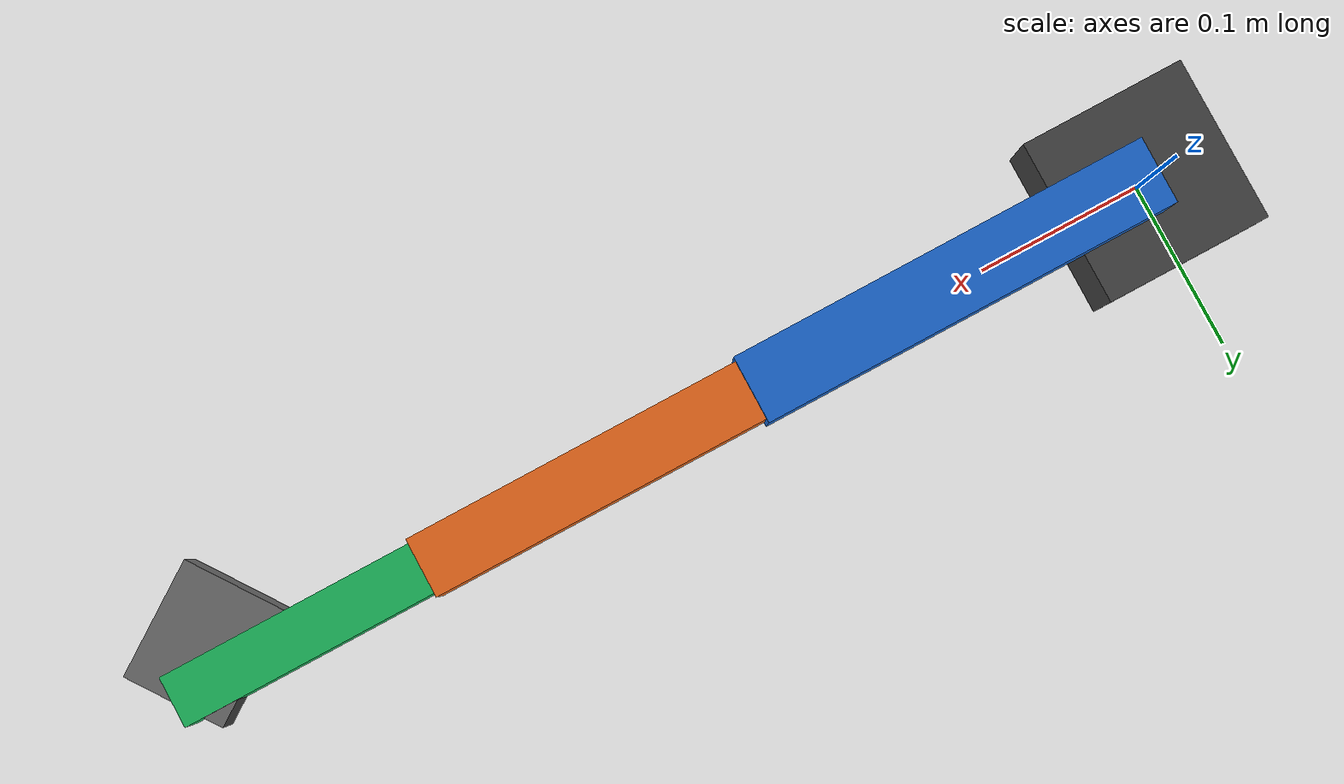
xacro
<?xml version="1.0"?>
<robot xmlns:xacro="http://www.ros.org/wiki/xacro" name="dynamixel_robot_arm">
  <xacro:arg name="device_name" default="/dev/ttyUSB0"/>
  <xacro:arg name="link1_length" default="0.25"/>
  <xacro:arg name="link2_length" default="0.20"/>
  <xacro:arg name="link3_length" default="0.15"/>
  <xacro:arg name="use_gripper" default="true"/>
  <xacro:arg name="degrees_per_tick" default="0.087890625"/>
  <xacro:arg name="joint1_motor_id" default="1"/>
  <xacro:arg name="joint1_expected_model" default="1001"/>
  <xacro:arg name="joint1_expected_operating_mode" default="3"/>
  <xacro:arg name="joint1_expected_drive_mode" default="0"/>
  <xacro:arg name="joint1_zero_ticks" default="2040"/>
  <xacro:arg name="joint1_direction" default="1.0"/>
  <xacro:arg name="joint1_min_absolute_deg" default="80.84"/>
  <xacro:arg name="joint1_max_absolute_deg" default="277.84"/>
  <xacro:arg name="joint2_motor_id" default="2"/>
  <xacro:arg name="joint2_expected_model" default="1001"/>
  <xacro:arg name="joint2_expected_operating_mode" default="3"/>
  <xacro:arg name="joint2_expected_drive_mode" default="0"/>
  <xacro:arg name="joint2_zero_ticks" default="2553"/>
  <xacro:arg name="joint2_direction" default="1.0"/>
  <xacro:arg name="joint2_min_absolute_deg" default="111.25"/>
  <xacro:arg name="joint2_max_absolute_deg" default="337.52"/>
  <xacro:arg name="joint3_motor_id" default="3"/>
  <xacro:arg name="joint3_expected_model" default="1020"/>
  <xacro:arg name="joint3_expected_operating_mode" default="3"/>
  <xacro:arg name="joint3_expected_drive_mode" default="0"/>
  <xacro:arg name="joint3_zero_ticks" default="2375"/>
  <xacro:arg name="joint3_direction" default="1.0"/>
  <xacro:arg name="joint3_min_absolute_deg" default="105.45"/>
  <xacro:arg name="joint3_max_absolute_deg" default="311.95"/>
  <xacro:arg name="gripper_joint_motor_id" default="4"/>
  <xacro:arg name="gripper_joint_expected_model" default="1020"/>
  <xacro:arg name="gripper_joint_expected_operating_mode" default="4"/>
  <xacro:arg name="gripper_joint_expected_drive_mode" default="0"/>
  <xacro:arg name="gripper_joint_zero_ticks" default="2305"/>
  <xacro:arg name="gripper_joint_direction" default="1.0"/>
  <xacro:arg name="gripper_joint_min_absolute_deg" default="320.80078125"/>
  <xacro:arg name="gripper_joint_max_absolute_deg" default="514.072265625"/>
  <xacro:property name="link1_length" value="$(arg link1_length)"/>
  <xacro:property name="link2_length" value="$(arg link2_length)"/>
  <xacro:property name="link3_length" value="$(arg link3_length)"/>
  <!-- Launch supplies these values from config/robot_arm_calibration.yaml. -->
  <xacro:property name="degrees_per_tick" value="$(arg degrees_per_tick)"/>
  <xacro:property name="radians_per_tick" value="${radians(float(degrees_per_tick))}"/>
  <xacro:property name="joint1_zero_deg"
    value="${int('$(arg joint1_zero_ticks)') * float(degrees_per_tick)}"/>
  <xacro:property name="joint2_zero_deg"
    value="${int('$(arg joint2_zero_ticks)') * float(degrees_per_tick)}"/>
  <xacro:property name="joint3_zero_deg"
    value="${int('$(arg joint3_zero_ticks)') * float(degrees_per_tick)}"/>
  <xacro:property name="gripper_zero_deg"
    value="${int('$(arg gripper_joint_zero_ticks)') * float(degrees_per_tick)}"/>
  <xacro:property name="joint1_a"
    value="${float('$(arg joint1_direction)') * (float('$(arg joint1_min_absolute_deg)') - joint1_zero_deg)}"/>
  <xacro:property name="joint1_b"
    value="${float('$(arg joint1_direction)') * (float('$(arg joint1_max_absolute_deg)') - joint1_zero_deg)}"/>
  <xacro:property name="joint2_a"
    value="${float('$(arg joint2_direction)') * (float('$(arg joint2_min_absolute_deg)') - joint2_zero_deg)}"/>
  <xacro:property name="joint2_b"
    value="${float('$(arg joint2_direction)') * (float('$(arg joint2_max_absolute_deg)') - joint2_zero_deg)}"/>
  <xacro:property name="joint3_a"
    value="${float('$(arg joint3_direction)') * (float('$(arg joint3_min_absolute_deg)') - joint3_zero_deg)}"/>
  <xacro:property name="joint3_b"
    value="${float('$(arg joint3_direction)') * (float('$(arg joint3_max_absolute_deg)') - joint3_zero_deg)}"/>
  <xacro:property name="gripper_a"
    value="${float('$(arg gripper_joint_direction)') * (float('$(arg gripper_joint_min_absolute_deg)') - gripper_zero_deg)}"/>
  <xacro:property name="gripper_b"
    value="${float('$(arg gripper_joint_direction)') * (float('$(arg gripper_joint_max_absolute_deg)') - gripper_zero_deg)}"/>
  <xacro:property name="joint1_min_rad" value="${radians(min(joint1_a, joint1_b))}"/>
  <xacro:property name="joint1_max_rad" value="${radians(max(joint1_a, joint1_b))}"/>
  <xacro:property name="joint2_min_rad" value="${radians(min(joint2_a, joint2_b))}"/>
  <xacro:property name="joint2_max_rad" value="${radians(max(joint2_a, joint2_b))}"/>
  <xacro:property name="joint3_min_rad" value="${radians(min(joint3_a, joint3_b))}"/>
  <xacro:property name="joint3_max_rad" value="${radians(max(joint3_a, joint3_b))}"/>
  <xacro:property name="gripper_min_rad" value="${radians(min(gripper_a, gripper_b))}"/>
  <xacro:property name="gripper_max_rad" value="${radians(max(gripper_a, gripper_b))}"/>

  <!-- Placeholder geometry: replace lengths and meshes with the actual mechanism. -->
  <link name="base_link">
    <visual>
      <geometry><box size="0.10 0.10 0.05"/></geometry>
      <material name="base_gray"><color rgba="0.25 0.25 0.25 1"/></material>
    </visual>
  </link>

  <link name="link1">
    <visual>
      <origin xyz="${float(link1_length) / 2.0} 0 0"/>
      <geometry><box size="${link1_length} 0.04 0.04"/></geometry>
      <material name="arm_blue"><color rgba="0.1 0.4 0.8 1"/></material>
    </visual>
  </link>

  <joint name="joint1" type="revolute">
    <parent link="base_link"/>
    <child link="link1"/>
    <origin xyz="0 0 0.04"/>
    <axis xyz="0 0 1"/>
    <!-- Measured 78.84..279.84 deg; limits include a 2 deg safety margin. -->
    <limit lower="${joint1_min_rad}" upper="${joint1_max_rad}" velocity="1.0" effort="5.0"/>
  </joint>

  <link name="link2">
    <visual>
      <origin xyz="${float(link2_length) / 2.0} 0 0"/>
      <geometry><box size="${link2_length} 0.035 0.035"/></geometry>
      <material name="arm_orange"><color rgba="0.9 0.4 0.1 1"/></material>
    </visual>
  </link>

  <joint name="joint2" type="revolute">
    <parent link="link1"/>
    <child link="link2"/>
    <origin xyz="${link1_length} 0 0"/>
    <axis xyz="0 0 1"/>
    <!-- Measured 109.25..339.52 deg; limits include a 2 deg safety margin. -->
    <limit lower="${joint2_min_rad}" upper="${joint2_max_rad}" velocity="1.0" effort="5.0"/>
  </joint>

  <link name="link3">
    <visual>
      <origin xyz="${float(link3_length) / 2.0} 0 0"/>
      <geometry><box size="${link3_length} 0.03 0.03"/></geometry>
      <material name="arm_green"><color rgba="0.1 0.7 0.35 1"/></material>
    </visual>
  </link>

  <joint name="joint3" type="revolute">
    <parent link="link2"/>
    <child link="link3"/>
    <origin xyz="${link2_length} 0 0"/>
    <axis xyz="0 0 1"/>
    <!-- Measured 103.45..313.95 deg; limits include a 2 deg safety margin. -->
    <limit lower="${joint3_min_rad}" upper="${joint3_max_rad}" velocity="1.0" effort="5.0"/>
  </joint>

  <link name="gripper_link">
    <visual>
      <origin xyz="0.035 0 0"/>
      <geometry><box size="0.07 0.06 0.025"/></geometry>
      <material name="gripper_gray"><color rgba="0.4 0.4 0.4 1"/></material>
    </visual>
  </link>

  <xacro:if value="$(arg use_gripper)">
    <joint name="gripper_joint" type="revolute">
      <parent link="link3"/>
      <child link="gripper_link"/>
      <origin xyz="${link3_length} 0 0"/>
      <axis xyz="0 0 1"/>
      <limit lower="${gripper_min_rad}" upper="${gripper_max_rad}" velocity="0.5" effort="5.0"/>
    </joint>
  </xacro:if>
  <xacro:unless value="$(arg use_gripper)">
    <joint name="gripper_fixed_joint" type="fixed">
      <parent link="link3"/>
      <child link="gripper_link"/>
      <origin xyz="${link3_length} 0 0"/>
    </joint>
  </xacro:unless>

  <ros2_control name="DynamixelRobotArm" type="system">
    <hardware>
      <plugin>robot_arm_hardware/DynamixelSystem</plugin>
      <param name="device_name">$(arg device_name)</param>
      <param name="baud_rate">1000000</param>
      <param name="protocol_version">2.0</param>
      <param name="drive_mode_address">10</param>
      <param name="operating_mode_address">11</param>
      <param name="torque_enable_address">64</param>
      <param name="goal_position_address">116</param>
      <param name="present_velocity_address">128</param>
      <param name="present_position_address">132</param>
      <param name="present_current_address">126</param>
      <param name="present_input_voltage_address">144</param>
      <param name="present_temperature_address">146</param>
      <param name="hardware_error_status_address">70</param>
      <param name="bus_watchdog_address">98</param>
      <param name="bus_watchdog_raw">25</param>
      <param name="diagnostic_read_interval">50</param>
      <param name="max_consecutive_read_failures">3</param>
      <param name="velocity_rad_s_per_raw_unit">0.023980824</param>
      <param name="current_amp_per_raw_unit">0.00269</param>
    </hardware>

    <joint name="joint1">
      <param name="motor_id">$(arg joint1_motor_id)</param>
      <param name="expected_model">$(arg joint1_expected_model)</param>
      <param name="expected_operating_mode">$(arg joint1_expected_operating_mode)</param>
      <param name="expected_drive_mode">$(arg joint1_expected_drive_mode)</param>
      <param name="zero_ticks">$(arg joint1_zero_ticks)</param>
      <param name="direction">$(arg joint1_direction)</param>
      <param name="radians_per_tick">${radians_per_tick}</param>
      <command_interface name="position">
        <param name="min">${joint1_min_rad}</param><param name="max">${joint1_max_rad}</param>
      </command_interface>
      <state_interface name="position"/>
      <state_interface name="velocity"/>
      <state_interface name="current"/>
      <state_interface name="voltage"/>
      <state_interface name="temperature"/>
      <state_interface name="hardware_error"/>
      <state_interface name="bus_watchdog"/>
      <state_interface name="communication_ok"/>
    </joint>

    <joint name="joint2">
      <param name="motor_id">$(arg joint2_motor_id)</param>
      <param name="expected_model">$(arg joint2_expected_model)</param>
      <param name="expected_operating_mode">$(arg joint2_expected_operating_mode)</param>
      <param name="expected_drive_mode">$(arg joint2_expected_drive_mode)</param>
      <param name="zero_ticks">$(arg joint2_zero_ticks)</param>
      <param name="direction">$(arg joint2_direction)</param>
      <param name="radians_per_tick">${radians_per_tick}</param>
      <command_interface name="position">
        <param name="min">${joint2_min_rad}</param><param name="max">${joint2_max_rad}</param>
      </command_interface>
      <state_interface name="position"/>
      <state_interface name="velocity"/>
      <state_interface name="current"/>
      <state_interface name="voltage"/>
      <state_interface name="temperature"/>
      <state_interface name="hardware_error"/>
      <state_interface name="bus_watchdog"/>
      <state_interface name="communication_ok"/>
    </joint>

    <joint name="joint3">
      <param name="motor_id">$(arg joint3_motor_id)</param>
      <param name="expected_model">$(arg joint3_expected_model)</param>
      <param name="expected_operating_mode">$(arg joint3_expected_operating_mode)</param>
      <param name="expected_drive_mode">$(arg joint3_expected_drive_mode)</param>
      <param name="zero_ticks">$(arg joint3_zero_ticks)</param>
      <param name="direction">$(arg joint3_direction)</param>
      <param name="radians_per_tick">${radians_per_tick}</param>
      <command_interface name="position">
        <param name="min">${joint3_min_rad}</param><param name="max">${joint3_max_rad}</param>
      </command_interface>
      <state_interface name="position"/>
      <state_interface name="velocity"/>
      <state_interface name="current"/>
      <state_interface name="voltage"/>
      <state_interface name="temperature"/>
      <state_interface name="hardware_error"/>
      <state_interface name="bus_watchdog"/>
      <state_interface name="communication_ok"/>
    </joint>

    <xacro:if value="$(arg use_gripper)">
      <joint name="gripper_joint">
        <param name="motor_id">$(arg gripper_joint_motor_id)</param>
        <param name="expected_model">$(arg gripper_joint_expected_model)</param>
        <param name="expected_operating_mode">$(arg gripper_joint_expected_operating_mode)</param>
        <param name="expected_drive_mode">$(arg gripper_joint_expected_drive_mode)</param>
        <param name="zero_ticks">$(arg gripper_joint_zero_ticks)</param>
        <param name="direction">$(arg gripper_joint_direction)</param>
        <param name="radians_per_tick">${radians_per_tick}</param>
        <command_interface name="position">
          <param name="min">${gripper_min_rad}</param><param name="max">${gripper_max_rad}</param>
        </command_interface>
        <state_interface name="position"/>
        <state_interface name="velocity"/>
        <state_interface name="current"/>
        <state_interface name="voltage"/>
        <state_interface name="temperature"/>
        <state_interface name="hardware_error"/>
        <state_interface name="bus_watchdog"/>
        <state_interface name="communication_ok"/>
      </joint>
    </xacro:if>
  </ros2_control>
</robot>
